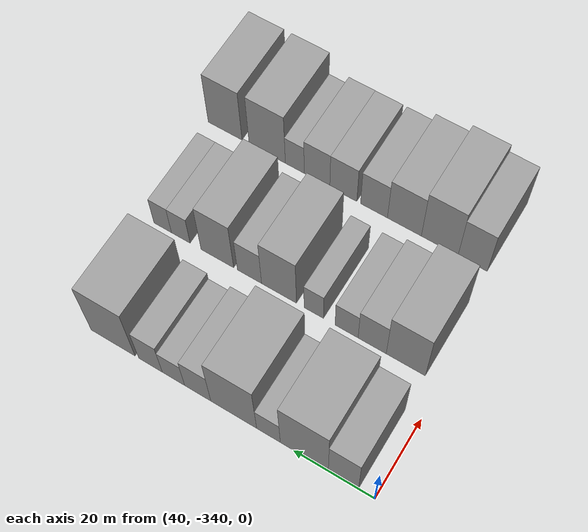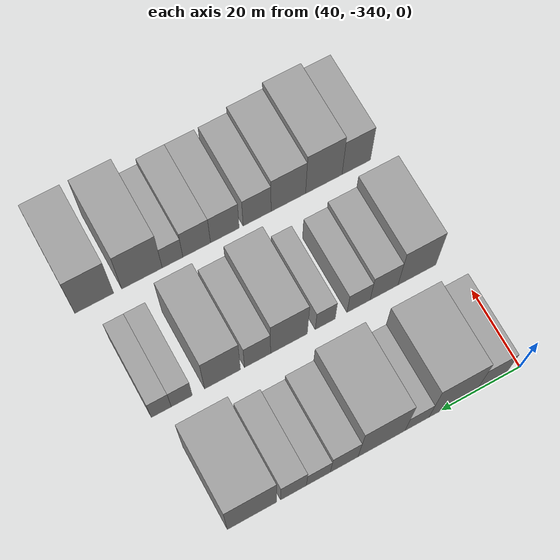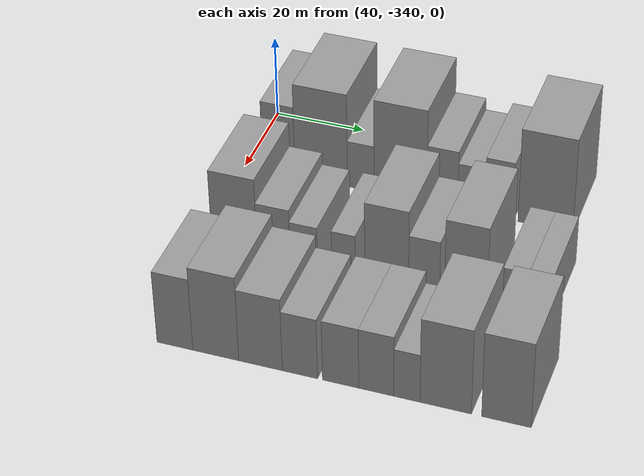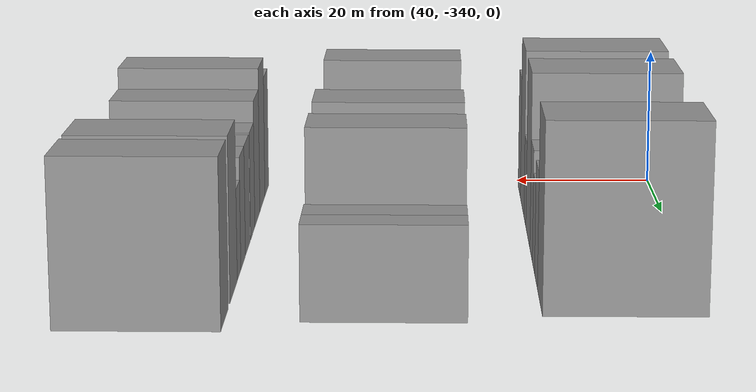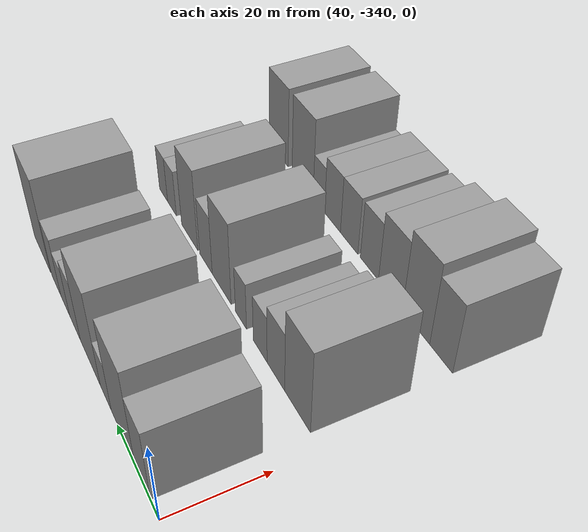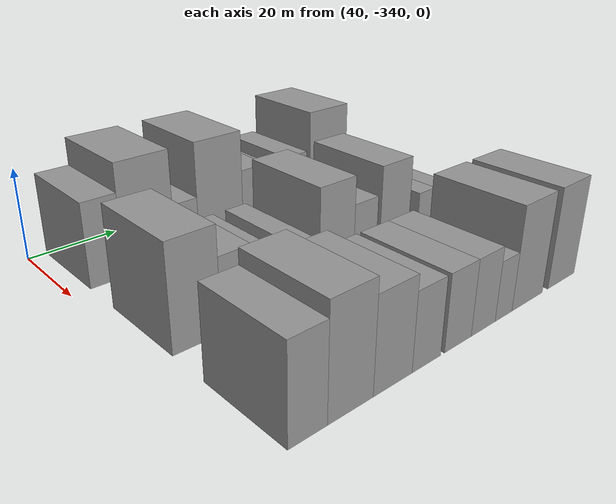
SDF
<sdf version="1.6">
 <world name="default">
  <model name="building_1">
   <static>1</static>
   <pose>50.0000 -332.3108 0 0.000000 0.000000 0.000000</pose>
   <link name="link">
    <pose>0 0 9.00 0 0 0</pose>
    <collision name="collision"><geometry><box><size>20.0000 7.3784 18.0000</size></box></geometry></collision>
    <visual name="visual">
     <cast_shadows>0</cast_shadows>
     <geometry><box><size>20.0000 7.3784 18.0000</size></box></geometry>
     <material>
      <script>
       <uri>model://grey_wall/materials/scripts</uri>
       <uri>model://grey_wall/materials/textures</uri>
       <name>vrc/grey_wall</name>
      </script>
     </material>
    </visual>
   </link>
  </model>
  <model name="building_2">
   <static>1</static>
   <pose>50.0000 -322.6757 0 0.000000 0.000000 0.000000</pose>
   <link name="link">
    <pose>0 0 12.00 0 0 0</pose>
    <collision name="collision"><geometry><box><size>20.0000 11.8918 24.0000</size></box></geometry></collision>
    <visual name="visual">
     <cast_shadows>0</cast_shadows>
     <geometry><box><size>20.0000 11.8918 24.0000</size></box></geometry>
     <material>
      <script>
       <uri>model://grey_wall/materials/scripts</uri>
       <uri>model://grey_wall/materials/textures</uri>
       <name>vrc/grey_wall</name>
      </script>
     </material>
    </visual>
   </link>
  </model>
  <model name="building_3">
   <static>1</static>
   <pose>50.0000 -313.7521 0 0.000000 0.000000 0.000000</pose>
   <link name="link">
    <pose>0 0 6.00 0 0 0</pose>
    <collision name="collision"><geometry><box><size>20.0000 5.9555 12.0000</size></box></geometry></collision>
    <visual name="visual">
     <cast_shadows>0</cast_shadows>
     <geometry><box><size>20.0000 5.9555 12.0000</size></box></geometry>
     <material>
      <script>
       <uri>model://grey_wall/materials/scripts</uri>
       <uri>model://grey_wall/materials/textures</uri>
       <name>vrc/grey_wall</name>
      </script>
     </material>
    </visual>
   </link>
  </model>
  <model name="building_4">
   <static>1</static>
   <pose>50.0000 -304.9141 0 0.000000 0.000000 0.000000</pose>
   <link name="link">
    <pose>0 0 12.00 0 0 0</pose>
    <collision name="collision"><geometry><box><size>20.0000 11.7204 24.0000</size></box></geometry></collision>
    <visual name="visual">
     <cast_shadows>0</cast_shadows>
     <geometry><box><size>20.0000 11.7204 24.0000</size></box></geometry>
     <material>
      <script>
       <uri>model://grey_wall/materials/scripts</uri>
       <uri>model://grey_wall/materials/textures</uri>
       <name>vrc/grey_wall</name>
      </script>
     </material>
    </visual>
   </link>
  </model>
  <model name="building_5">
   <static>1</static>
   <pose>50.0000 -295.6579 0 0.000000 0.000000 0.000000</pose>
   <link name="link">
    <pose>0 0 7.50 0 0 0</pose>
    <collision name="collision"><geometry><box><size>20.0000 6.7922 15.0000</size></box></geometry></collision>
    <visual name="visual">
     <cast_shadows>0</cast_shadows>
     <geometry><box><size>20.0000 6.7922 15.0000</size></box></geometry>
     <material>
      <script>
       <uri>model://grey_wall/materials/scripts</uri>
       <uri>model://grey_wall/materials/textures</uri>
       <name>vrc/grey_wall</name>
      </script>
     </material>
    </visual>
   </link>
  </model>
  <model name="building_6">
   <static>1</static>
   <pose>50.0000 -289.3308 0 0.000000 0.000000 0.000000</pose>
   <link name="link">
    <pose>0 0 6.00 0 0 0</pose>
    <collision name="collision"><geometry><box><size>20.0000 5.8620 12.0000</size></box></geometry></collision>
    <visual name="visual">
     <cast_shadows>0</cast_shadows>
     <geometry><box><size>20.0000 5.8620 12.0000</size></box></geometry>
     <material>
      <script>
       <uri>model://grey_wall/materials/scripts</uri>
       <uri>model://grey_wall/materials/textures</uri>
       <name>vrc/grey_wall</name>
      </script>
     </material>
    </visual>
   </link>
  </model>
  <model name="building_7">
   <static>1</static>
   <pose>50.0000 -283.2751 0 0.000000 0.000000 0.000000</pose>
   <link name="link">
    <pose>0 0 7.50 0 0 0</pose>
    <collision name="collision"><geometry><box><size>20.0000 6.2495 15.0000</size></box></geometry></collision>
    <visual name="visual">
     <cast_shadows>0</cast_shadows>
     <geometry><box><size>20.0000 6.2495 15.0000</size></box></geometry>
     <material>
      <script>
       <uri>model://grey_wall/materials/scripts</uri>
       <uri>model://grey_wall/materials/textures</uri>
       <name>vrc/grey_wall</name>
      </script>
     </material>
    </visual>
   </link>
  </model>
  <model name="building_8">
   <static>1</static>
   <pose>50.0000 -273.2526 0 0.000000 0.000000 0.000000</pose>
   <link name="link">
    <pose>0 0 12.00 0 0 0</pose>
    <collision name="collision"><geometry><box><size>20.0000 11.7955 24.0000</size></box></geometry></collision>
    <visual name="visual">
     <cast_shadows>0</cast_shadows>
     <geometry><box><size>20.0000 11.7955 24.0000</size></box></geometry>
     <material>
      <script>
       <uri>model://grey_wall/materials/scripts</uri>
       <uri>model://grey_wall/materials/textures</uri>
       <name>vrc/grey_wall</name>
      </script>
     </material>
    </visual>
   </link>
  </model>
  <model name="building_67">
   <static>1</static>
   <pose>79.0000 -331.0777 0 0.000000 0.000000 0.000000</pose>
   <link name="link">
    <pose>0 0 10.50 0 0 0</pose>
    <collision name="collision"><geometry><box><size>20.0000 9.8445 21.0000</size></box></geometry></collision>
    <visual name="visual">
     <cast_shadows>0</cast_shadows>
     <geometry><box><size>20.0000 9.8445 21.0000</size></box></geometry>
     <material>
      <script>
       <uri>model://grey_wall/materials/scripts</uri>
       <uri>model://grey_wall/materials/textures</uri>
       <name>vrc/grey_wall</name>
      </script>
     </material>
    </visual>
   </link>
  </model>
  <model name="building_68">
   <static>1</static>
   <pose>79.0000 -322.5721 0 0.000000 0.000000 0.000000</pose>
   <link name="link">
    <pose>0 0 7.50 0 0 0</pose>
    <collision name="collision"><geometry><box><size>20.0000 7.1668 15.0000</size></box></geometry></collision>
    <visual name="visual">
     <cast_shadows>0</cast_shadows>
     <geometry><box><size>20.0000 7.1668 15.0000</size></box></geometry>
     <material>
      <script>
       <uri>model://grey_wall/materials/scripts</uri>
       <uri>model://grey_wall/materials/textures</uri>
       <name>vrc/grey_wall</name>
      </script>
     </material>
    </visual>
   </link>
  </model>
  <model name="building_69">
   <static>1</static>
   <pose>79.0000 -316.0284 0 0.000000 0.000000 0.000000</pose>
   <link name="link">
    <pose>0 0 6.00 0 0 0</pose>
    <collision name="collision"><geometry><box><size>20.0000 5.9204 12.0000</size></box></geometry></collision>
    <visual name="visual">
     <cast_shadows>0</cast_shadows>
     <geometry><box><size>20.0000 5.9204 12.0000</size></box></geometry>
     <material>
      <script>
       <uri>model://grey_wall/materials/scripts</uri>
       <uri>model://grey_wall/materials/textures</uri>
       <name>vrc/grey_wall</name>
      </script>
     </material>
    </visual>
   </link>
  </model>
  <model name="building_70">
   <static>1</static>
   <pose>79.0000 -307.5376 0 0.000000 0.000000 0.000000</pose>
   <link name="link">
    <pose>0 0 6.00 0 0 0</pose>
    <collision name="collision"><geometry><box><size>20.0000 5.0613 12.0000</size></box></geometry></collision>
    <visual name="visual">
     <cast_shadows>0</cast_shadows>
     <geometry><box><size>20.0000 5.0613 12.0000</size></box></geometry>
     <material>
      <script>
       <uri>model://grey_wall/materials/scripts</uri>
       <uri>model://grey_wall/materials/textures</uri>
       <name>vrc/grey_wall</name>
      </script>
     </material>
    </visual>
   </link>
  </model>
  <model name="building_71">
   <static>1</static>
   <pose>79.0000 -298.3818 0 0.000000 0.000000 0.000000</pose>
   <link name="link">
    <pose>0 0 10.50 0 0 0</pose>
    <collision name="collision"><geometry><box><size>20.0000 9.2502 21.0000</size></box></geometry></collision>
    <visual name="visual">
     <cast_shadows>0</cast_shadows>
     <geometry><box><size>20.0000 9.2502 21.0000</size></box></geometry>
     <material>
      <script>
       <uri>model://grey_wall/materials/scripts</uri>
       <uri>model://grey_wall/materials/textures</uri>
       <name>vrc/grey_wall</name>
      </script>
     </material>
    </visual>
   </link>
  </model>
  <model name="building_72">
   <static>1</static>
   <pose>79.0000 -290.5186 0 0.000000 0.000000 0.000000</pose>
   <link name="link">
    <pose>0 0 7.50 0 0 0</pose>
    <collision name="collision"><geometry><box><size>20.0000 6.4762 15.0000</size></box></geometry></collision>
    <visual name="visual">
     <cast_shadows>0</cast_shadows>
     <geometry><box><size>20.0000 6.4762 15.0000</size></box></geometry>
     <material>
      <script>
       <uri>model://grey_wall/materials/scripts</uri>
       <uri>model://grey_wall/materials/textures</uri>
       <name>vrc/grey_wall</name>
      </script>
     </material>
    </visual>
   </link>
  </model>
  <model name="building_73">
   <static>1</static>
   <pose>79.0000 -281.8414 0 0.000000 0.000000 0.000000</pose>
   <link name="link">
    <pose>0 0 10.50 0 0 0</pose>
    <collision name="collision"><geometry><box><size>20.0000 8.8783 21.0000</size></box></geometry></collision>
    <visual name="visual">
     <cast_shadows>0</cast_shadows>
     <geometry><box><size>20.0000 8.8783 21.0000</size></box></geometry>
     <material>
      <script>
       <uri>model://grey_wall/materials/scripts</uri>
       <uri>model://grey_wall/materials/textures</uri>
       <name>vrc/grey_wall</name>
      </script>
     </material>
    </visual>
   </link>
  </model>
  <model name="building_74">
   <static>1</static>
   <pose>79.0000 -271.8258 0 0.000000 0.000000 0.000000</pose>
   <link name="link">
    <pose>0 0 6.00 0 0 0</pose>
    <collision name="collision"><geometry><box><size>20.0000 5.1529 12.0000</size></box></geometry></collision>
    <visual name="visual">
     <cast_shadows>0</cast_shadows>
     <geometry><box><size>20.0000 5.1529 12.0000</size></box></geometry>
     <material>
      <script>
       <uri>model://grey_wall/materials/scripts</uri>
       <uri>model://grey_wall/materials/textures</uri>
       <name>vrc/grey_wall</name>
      </script>
     </material>
    </visual>
   </link>
  </model>
  <model name="building_75">
   <static>1</static>
   <pose>79.0000 -266.8189 0 0.000000 0.000000 0.000000</pose>
   <link name="link">
    <pose>0 0 6.00 0 0 0</pose>
    <collision name="collision"><geometry><box><size>20.0000 4.8611 12.0000</size></box></geometry></collision>
    <visual name="visual">
     <cast_shadows>0</cast_shadows>
     <geometry><box><size>20.0000 4.8611 12.0000</size></box></geometry>
     <material>
      <script>
       <uri>model://grey_wall/materials/scripts</uri>
       <uri>model://grey_wall/materials/textures</uri>
       <name>vrc/grey_wall</name>
      </script>
     </material>
    </visual>
   </link>
  </model>
  <model name="building_135">
   <static>1</static>
   <pose>108.0000 -332.2345 0 0.000000 0.000000 0.000000</pose>
   <link name="link">
    <pose>0 0 9.00 0 0 0</pose>
    <collision name="collision"><geometry><box><size>20.0000 7.5309 18.0000</size></box></geometry></collision>
    <visual name="visual">
     <cast_shadows>0</cast_shadows>
     <geometry><box><size>20.0000 7.5309 18.0000</size></box></geometry>
     <material>
      <script>
       <uri>model://grey_wall/materials/scripts</uri>
       <uri>model://grey_wall/materials/textures</uri>
       <name>vrc/grey_wall</name>
      </script>
     </material>
    </visual>
   </link>
  </model>
  <model name="building_136">
   <static>1</static>
   <pose>108.0000 -323.6910 0 0.000000 0.000000 0.000000</pose>
   <link name="link">
    <pose>0 0 10.50 0 0 0</pose>
    <collision name="collision"><geometry><box><size>20.0000 9.5561 21.0000</size></box></geometry></collision>
    <visual name="visual">
     <cast_shadows>0</cast_shadows>
     <geometry><box><size>20.0000 9.5561 21.0000</size></box></geometry>
     <material>
      <script>
       <uri>model://grey_wall/materials/scripts</uri>
       <uri>model://grey_wall/materials/textures</uri>
       <name>vrc/grey_wall</name>
      </script>
     </material>
    </visual>
   </link>
  </model>
  <model name="building_137">
   <static>1</static>
   <pose>108.0000 -314.4202 0 0.000000 0.000000 0.000000</pose>
   <link name="link">
    <pose>0 0 9.00 0 0 0</pose>
    <collision name="collision"><geometry><box><size>20.0000 8.9856 18.0000</size></box></geometry></collision>
    <visual name="visual">
     <cast_shadows>0</cast_shadows>
     <geometry><box><size>20.0000 8.9856 18.0000</size></box></geometry>
     <material>
      <script>
       <uri>model://grey_wall/materials/scripts</uri>
       <uri>model://grey_wall/materials/textures</uri>
       <name>vrc/grey_wall</name>
      </script>
     </material>
    </visual>
   </link>
  </model>
  <model name="building_138">
   <static>1</static>
   <pose>108.0000 -306.3308 0 0.000000 0.000000 0.000000</pose>
   <link name="link">
    <pose>0 0 7.50 0 0 0</pose>
    <collision name="collision"><geometry><box><size>20.0000 7.1933 15.0000</size></box></geometry></collision>
    <visual name="visual">
     <cast_shadows>0</cast_shadows>
     <geometry><box><size>20.0000 7.1933 15.0000</size></box></geometry>
     <material>
      <script>
       <uri>model://grey_wall/materials/scripts</uri>
       <uri>model://grey_wall/materials/textures</uri>
       <name>vrc/grey_wall</name>
      </script>
     </material>
    </visual>
   </link>
  </model>
  <model name="building_139">
   <static>1</static>
   <pose>108.0000 -298.0703 0 0.000000 0.000000 0.000000</pose>
   <link name="link">
    <pose>0 0 7.50 0 0 0</pose>
    <collision name="collision"><geometry><box><size>20.0000 7.3277 15.0000</size></box></geometry></collision>
    <visual name="visual">
     <cast_shadows>0</cast_shadows>
     <geometry><box><size>20.0000 7.3277 15.0000</size></box></geometry>
     <material>
      <script>
       <uri>model://grey_wall/materials/scripts</uri>
       <uri>model://grey_wall/materials/textures</uri>
       <name>vrc/grey_wall</name>
      </script>
     </material>
    </visual>
   </link>
  </model>
  <model name="building_140">
   <static>1</static>
   <pose>108.0000 -290.8923 0 0.000000 0.000000 0.000000</pose>
   <link name="link">
    <pose>0 0 7.50 0 0 0</pose>
    <collision name="collision"><geometry><box><size>20.0000 7.0283 15.0000</size></box></geometry></collision>
    <visual name="visual">
     <cast_shadows>0</cast_shadows>
     <geometry><box><size>20.0000 7.0283 15.0000</size></box></geometry>
     <material>
      <script>
       <uri>model://grey_wall/materials/scripts</uri>
       <uri>model://grey_wall/materials/textures</uri>
       <name>vrc/grey_wall</name>
      </script>
     </material>
    </visual>
   </link>
  </model>
  <model name="building_141">
   <static>1</static>
   <pose>108.0000 -284.7669 0 0.000000 0.000000 0.000000</pose>
   <link name="link">
    <pose>0 0 6.00 0 0 0</pose>
    <collision name="collision"><geometry><box><size>20.0000 5.2225 12.0000</size></box></geometry></collision>
    <visual name="visual">
     <cast_shadows>0</cast_shadows>
     <geometry><box><size>20.0000 5.2225 12.0000</size></box></geometry>
     <material>
      <script>
       <uri>model://grey_wall/materials/scripts</uri>
       <uri>model://grey_wall/materials/textures</uri>
       <name>vrc/grey_wall</name>
      </script>
     </material>
    </visual>
   </link>
  </model>
  <model name="building_142">
   <static>1</static>
   <pose>108.0000 -277.0806 0 0.000000 0.000000 0.000000</pose>
   <link name="link">
    <pose>0 0 10.50 0 0 0</pose>
    <collision name="collision"><geometry><box><size>20.0000 10.1501 21.0000</size></box></geometry></collision>
    <visual name="visual">
     <cast_shadows>0</cast_shadows>
     <geometry><box><size>20.0000 10.1501 21.0000</size></box></geometry>
     <material>
      <script>
       <uri>model://grey_wall/materials/scripts</uri>
       <uri>model://grey_wall/materials/textures</uri>
       <name>vrc/grey_wall</name>
      </script>
     </material>
    </visual>
   </link>
  </model>
  <model name="building_143">
   <static>1</static>
   <pose>108.0000 -265.1861 0 0.000000 0.000000 0.000000</pose>
   <link name="link">
    <pose>0 0 10.50 0 0 0</pose>
    <collision name="collision"><geometry><box><size>20.0000 9.6389 21.0000</size></box></geometry></collision>
    <visual name="visual">
     <cast_shadows>0</cast_shadows>
     <geometry><box><size>20.0000 9.6389 21.0000</size></box></geometry>
     <material>
      <script>
       <uri>model://grey_wall/materials/scripts</uri>
       <uri>model://grey_wall/materials/textures</uri>
       <name>vrc/grey_wall</name>
      </script>
     </material>
    </visual>
   </link>
  </model>
 </world>
</sdf>
